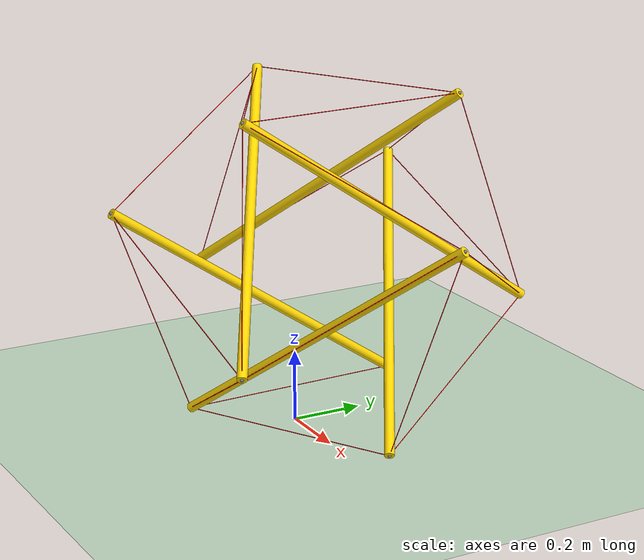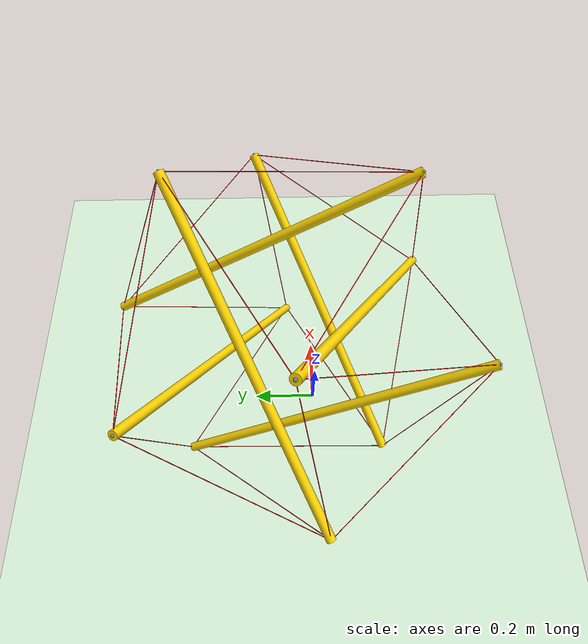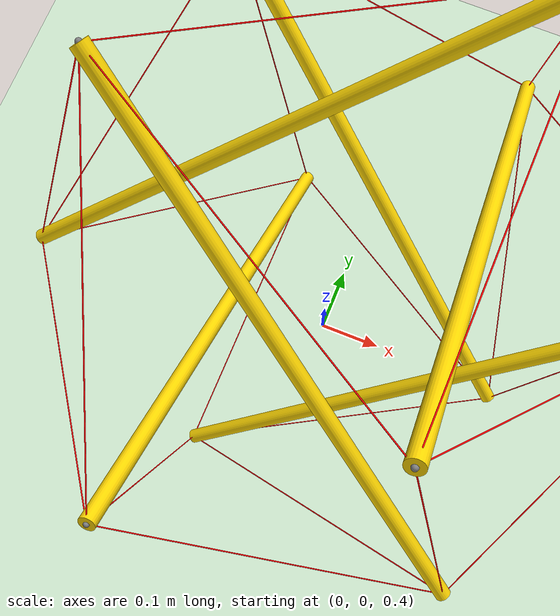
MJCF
<mujoco model="TT (v1.31)">
    <compiler angle="degree" coordinate="local" inertiafromgeom="true" />

    <option timestep="0.002" iterations="50" integrator="RK4" />

    <default>
        <geom conaffinity="1" condim="1" contype="1" material="geom" margin="0.001" rgba="1 .84 0 1" />
        <site type="sphere" size="0.005" />
        <tendon limited="true" range="0 10" width="0.001" rgba="1 0 0 1" stiffness="250.0" />
        <position ctrllimited="true" ctrlrange="-300 0.00" />
        <joint damping="1.0" armature="1.0" limited="false" stiffness="250.0" />
    </default>

    <asset>
        <texture builtin="gradient" height="100" rgb1=".4 .5 .6" rgb2="0 0 0" type="skybox"
            width="100" />
        <texture builtin="flat" height="1278" mark="cross" markrgb="1 1 1" name="texgeom"
            random="0.01" rgb1="0.8 0.6 0.4" rgb2="0.8 0.6 0.4" type="cube" width="127" />
        <texture builtin="checker" height="100" name="texplane" rgb1="0 0 0" rgb2="0.8 0.8 0.8"
            type="2d" width="100" />
        <material name="MatPlane" reflectance="0.5" shininess="1" specular="1" texrepeat="60 60"
            texture="texplane" />
        <material name="geom" texture="texgeom" texuniform="true" />
    </asset>

    <worldbody>

        <light cutoff="100" diffuse="1 1 1" dir="-0 0 -1.3" directional="true" exponent="1"
            pos="0 0 1.3" specular=".1 .1 .1" />
        <geom condim="3" friction="1 1 1" material="MatPlane" name="floor" pos="0 0 0"
            rgba="0.8 0.9 0.8 1" size="20 20 0.125" type="plane" />

        <!-- ======= RODS ======= -->

        <body name="rod0_1" pos="0 0 0">
            <geom name="r01" fromto="0.554168  0.181788  0.608605 -0.191882  -0.227347  0.0105941"
                density="1000" type="cylinder" size="0.014" />
            <joint name="move0_1" type="free" />

            <site name="s0" pos="0.554168  0.181788  0.608605" />
            <site name="s1" pos="-0.191882  -0.227347  0.0105941" />
        </body>

        <body name="rod2_3" pos="0 0 0">
            <geom name="r23" fromto="-0.186509 -0.448923  0.60765 -0.186517  0.409422 0.020415"
                density="1000" type="cylinder" size="0.014" />
            <joint name="move2_3" type="free" />

            <site name="s2" pos="-0.186509 -0.448923  0.60765" />
            <site name="s3" pos="-0.186517  0.409422  0.020415" />
        </body>

        <body name="rod4_5" pos="0 0 0">
            <geom name="r45" fromto="0.362289 -0.342679   0.302473 -0.362286   0.0785728  0.918215"
                density="1000" type="cylinder" size="0.014" />
            <joint name="move4_5" type="free" />

            <site name="s4" pos="0.362289 -0.342679  0.302473" />
            <site name="s5" pos="-0.362286   0.0785728  0.918215" />
        </body>

        <body name="rod6_7" pos="0 0 0">
            <geom name="r67" fromto="-0.55417   -0.0167216  0.318465 0.191881  0.392414  0.916476"
                density="1000" type="cylinder" size="0.014" />
            <joint name="move6_7" type="free" />

            <site name="s6" pos="-0.55417   -0.0167216  0.318465" />
            <site name="s7" pos="0.191881  0.392414  0.916476" />
        </body>
        <body name="rod8_9" pos="0 0 0">
            <geom name="r89" fromto="0.186516 -0.244355  0.906655 0.186508  0.613989  0.319421"
                density="1000" type="cylinder" size="0.014" />
            <joint name="move8_9" type="free" />

            <site name="s8" pos="0.186516 -0.244355  0.906655" />
            <site name="s9" pos="0.186508  0.613989  0.319421" />
        </body>
        <body name="rod10_11" pos="0 0 0">
            <geom name="r1011"
                fromto="0.362285    0.0864934   0.00885547 -0.36229   0.507745   0.624597"
                density="1000" type="cylinder" size="0.014" />
            <joint name="move10_11" type="free" />

            <site name="s10" pos="0.362285    0.0864934   0.00885547" />
            <site name="s11" pos="-0.36229   0.507745   0.624597" />
        </body>

    </worldbody>

    <!-- TENDONS -->

    <tendon>
        <spatial name="td_0">
            <site site="s0" />
            <site site="s10" />
        </spatial>
        <spatial name="td_1">
            <site site="s1" />
            <site site="s4" />
        </spatial>
        <spatial name="td_2">
            <site site="s2" />
            <site site="s6" />
        </spatial>
        <spatial name="td_3">
            <site site="s3" />
            <site site="s1" />
        </spatial>
        <spatial name="td_4">
            <site site="s4" />
            <site site="s8" />
        </spatial>
        <spatial name="td_5">
            <site site="s5" />
            <site site="s2" />
        </spatial>
        <spatial name="td_6">
            <site site="s6" />
            <site site="s5" />
        </spatial>
        <spatial name="td_7">
            <site site="s7" />
            <site site="s11" />
        </spatial>
        <spatial name="td_8">
            <site site="s8" />
            <site site="s7" />
        </spatial>
        <spatial name="td_9">
            <site site="s9" />
            <site site="s0" />
        </spatial>
        <spatial name="td_10">
            <site site="s10" />
            <site site="s9" />
        </spatial>
        <spatial name="td_11">
            <site site="s11" />
            <site site="s3" />
        </spatial>
        <spatial name="td_12">
            <site site="s0" />
            <site site="s8" />
        </spatial>
        <spatial name="td_13">
            <site site="s0" />
            <site site="s4" />
        </spatial>
        <spatial name="td_14">
            <site site="s10" />
            <site site="s1" />
        </spatial>
        <spatial name="td_15">
            <site site="s10" />
            <site site="s3" />
        </spatial>
        <spatial name="td_16">
            <site site="s9" />
            <site site="s11" />
        </spatial>
        <spatial name="td_17">
            <site site="s9" />
            <site site="s7" />
        </spatial>
        <spatial name="td_18">
            <site site="s2" />
            <site site="s4" />
        </spatial>
        <spatial name="td_19">
            <site site="s2" />
            <site site="s1" />
        </spatial>
        <spatial name="td_20">
            <site site="s6" />
            <site site="s3" />
        </spatial>
        <spatial name="td_21">
            <site site="s6" />
            <site site="s11" />
        </spatial>
        <spatial name="td_22">
            <site site="s5" />
            <site site="s7" />
        </spatial>
        <spatial name="td_23">
            <site site="s5" />
            <site site="s8" />

        </spatial>
    </tendon>

    <!-- ACTUATION -->

    <actuator>
        <position tendon="td_0" />
        <position tendon="td_1" />
        <position tendon="td_2" />
        <position tendon="td_3" />
        <position tendon="td_4" />
        <position tendon="td_5" />
        <position tendon="td_6" />
        <position tendon="td_7" />
        <position tendon="td_8" />
        <position tendon="td_9" />
        <position tendon="td_10" />
        <position tendon="td_11" />
    </actuator>
</mujoco>
